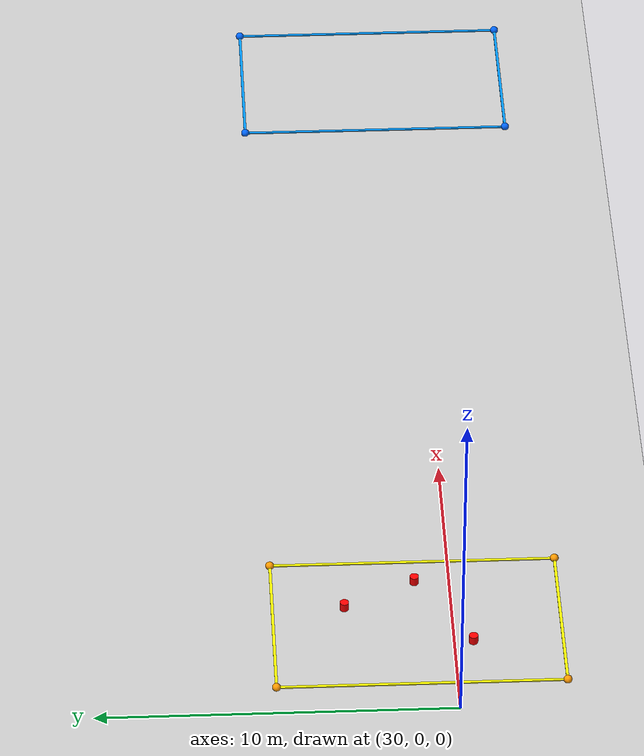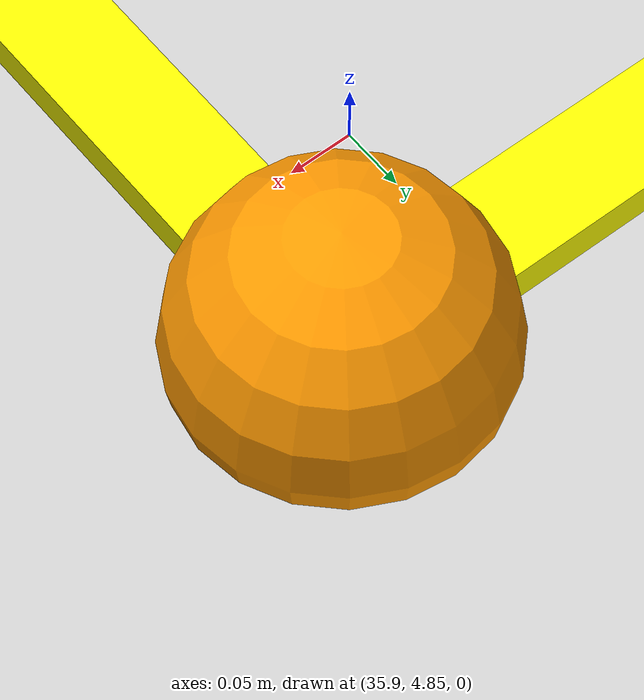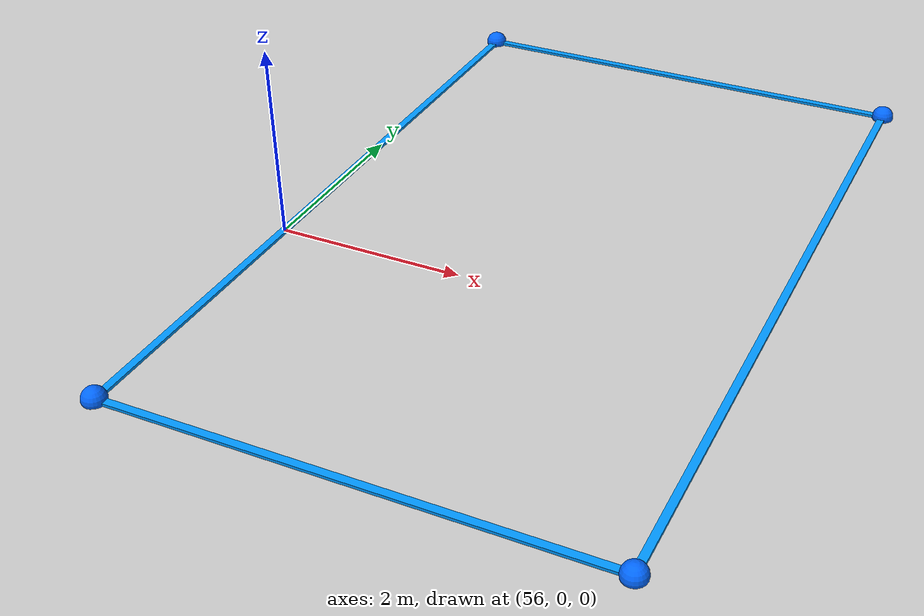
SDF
<?xml version="1.0" ?>
<sdf version="1.6">
  <world name="a">
    <plugin name="gazebo_ros_init" filename="libgazebo_ros_init.so"/>
    <plugin name="gazebo_ros_state" filename="libgazebo_ros_state.so"/>

    <include>
      <uri>model://sun</uri>
    </include>

    <include>
      <uri>model://ground_plane</uri>
    </include>

    <!-- ==================== 投放区 ==================== -->

    <!-- 后端框边 (NED y=30, Gazebo x=31.01) -->
    <model name="drop_border_back">
      <static>true</static>
      <pose>31.01 0.98 0.015 0 0 0</pose>
      <link name="link">
        <collision name="collision">
          <geometry><box><size>0.08 8.0 0.03</size></box></geometry>
        </collision>
        <visual name="visual">
          <geometry><box><size>0.08 8.0 0.03</size></box></geometry>
          <material>
            <ambient>1 1 0 1</ambient>
            <diffuse>1 1 0 1</diffuse>
          </material>
        </visual>
      </link>
    </model>

    <!-- 前端框边 (NED y=35, Gazebo x=36.01) -->
    <model name="drop_border_front">
      <static>true</static>
      <pose>36.01 0.98 0.015 0 0 0</pose>
      <link name="link">
        <collision name="collision">
          <geometry><box><size>0.08 8.0 0.03</size></box></geometry>
        </collision>
        <visual name="visual">
          <geometry><box><size>0.08 8.0 0.03</size></box></geometry>
          <material>
            <ambient>1 1 0 1</ambient>
            <diffuse>1 1 0 1</diffuse>
          </material>
        </visual>
      </link>
    </model>

    <!-- 左框边 (NED x=-4, Gazebo y=-3.02) -->
    <model name="drop_border_left">
      <static>true</static>
      <pose>33.51 -3.02 0.015 0 0 0</pose>
      <link name="link">
        <collision name="collision">
          <geometry><box><size>5.0 0.08 0.03</size></box></geometry>
        </collision>
        <visual name="visual">
          <geometry><box><size>5.0 0.08 0.03</size></box></geometry>
          <material>
            <ambient>1 1 0 1</ambient>
            <diffuse>1 1 0 1</diffuse>
          </material>
        </visual>
      </link>
    </model>

    <!-- 右框边 (NED x=+4, Gazebo y=4.98) -->
    <model name="drop_border_right">
      <static>true</static>
      <pose>33.51 4.98 0.015 0 0 0</pose>
      <link name="link">
        <collision name="collision">
          <geometry><box><size>5.0 0.08 0.03</size></box></geometry>
        </collision>
        <visual name="visual">
          <geometry><box><size>5.0 0.08 0.03</size></box></geometry>
          <material>
            <ambient>1 1 0 1</ambient>
            <diffuse>1 1 0 1</diffuse>
          </material>
        </visual>
      </link>
    </model>

    <!-- 投放区 4 角标 (橙色) -->
    <model name="drop_corner_bl"><static>true</static><pose>31.01 -3.02 0.02 0 0 0</pose>
      <link name="link">
        <visual name="visual">
          <geometry><sphere><radius>0.12</radius></sphere></geometry>
          <material><ambient>1 0.6 0 1</ambient><diffuse>1 0.6 0 1</diffuse></material>
        </visual>
      </link>
    </model>
    <model name="drop_corner_br"><static>true</static><pose>31.01 4.98 0.02 0 0 0</pose>
      <link name="link">
        <visual name="visual">
          <geometry><sphere><radius>0.12</radius></sphere></geometry>
          <material><ambient>1 0.6 0 1</ambient><diffuse>1 0.6 0 1</diffuse></material>
        </visual>
      </link>
    </model>
    <model name="drop_corner_fl"><static>true</static><pose>36.01 -3.02 0.02 0 0 0</pose>
      <link name="link">
        <visual name="visual">
          <geometry><sphere><radius>0.12</radius></sphere></geometry>
          <material><ambient>1 0.6 0 1</ambient><diffuse>1 0.6 0 1</diffuse></material>
        </visual>
      </link>
    </model>
    <model name="drop_corner_fr"><static>true</static><pose>36.01 4.98 0.02 0 0 0</pose>
      <link name="link">
        <visual name="visual">
          <geometry><sphere><radius>0.12</radius></sphere></geometry>
          <material><ambient>1 0.6 0 1</ambient><diffuse>1 0.6 0 1</diffuse></material>
        </visual>
      </link>
    </model>

    <model name="target_bucket_1">
      <pose>32.51 -0.52 0.25 0 0 0</pose>
      <link name="bucket_link">
        <inertial>
          <mass>0.5</mass>
          <inertia>
            <ixx>0.01</ixx><ixy>0</ixy><ixz>0</ixz>
            <iyy>0.01</iyy><iyz>0</iyz>
            <izz>0.01</izz>
          </inertia>
        </inertial>
        <collision name="bucket_collision">
          <geometry>
            <cylinder><radius>0.125</radius><length>0.25</length></cylinder>
          </geometry>
        </collision>
        <visual name="bucket_visual">
          <geometry>
            <cylinder><radius>0.125</radius><length>0.25</length></cylinder>
          </geometry>
          <material>
            <ambient>1 0 0 1</ambient>
            <diffuse>1 0 0 1</diffuse>
          </material>
        </visual>
      </link>
    </model>

    <model name="target_bucket_2">
      <pose>34.01 2.98 0.25 0 0 0</pose>
      <link name="bucket_link">
        <inertial>
          <mass>0.5</mass>
          <inertia>
            <ixx>0.01</ixx><ixy>0</ixy><ixz>0</ixz>
            <iyy>0.01</iyy><iyz>0</iyz>
            <izz>0.01</izz>
          </inertia>
        </inertial>
        <collision name="bucket_collision">
          <geometry>
            <cylinder><radius>0.125</radius><length>0.25</length></cylinder>
          </geometry>
        </collision>
        <visual name="bucket_visual">
          <geometry>
            <cylinder><radius>0.125</radius><length>0.25</length></cylinder>
          </geometry>
          <material>
            <ambient>1 0 0 1</ambient>
            <diffuse>1 0 0 1</diffuse>
          </material>
        </visual>
      </link>
    </model>

    <model name="target_bucket_3">
      <pose>35.01 0.98 0.25 0 0 0</pose>
      <link name="bucket_link">
        <inertial>
          <mass>0.5</mass>
          <inertia>
            <ixx>0.01</ixx><ixy>0</ixy><ixz>0</ixz>
            <iyy>0.01</iyy><iyz>0</iyz>
            <izz>0.01</izz>
          </inertia>
        </inertial>
        <collision name="bucket_collision">
          <geometry>
            <cylinder><radius>0.125</radius><length>0.25</length></cylinder>
          </geometry>
        </collision>
        <visual name="bucket_visual">
          <geometry>
            <cylinder><radius>0.125</radius><length>0.25</length></cylinder>
          </geometry>
          <material>
            <ambient>1 0 0 1</ambient>
            <diffuse>1 0 0 1</diffuse>
          </material>
        </visual>
      </link>
    </model>

    <!-- ==================== 侦察区 (无目标物) ==================== -->

    <!-- 侦察区后端框边 (NED y=55, Gazebo x=56.01) -->
    <model name="scout_border_back">
      <static>true</static>
      <pose>56.01 0.98 0.015 0 0 0</pose>
      <link name="link">
        <collision name="collision">
          <geometry><box><size>0.08 8.0 0.03</size></box></geometry>
        </collision>
        <visual name="visual">
          <geometry><box><size>0.08 8.0 0.03</size></box></geometry>
          <material>
            <ambient>0 0.6 1 1</ambient>
            <diffuse>0 0.6 1 1</diffuse>
          </material>
        </visual>
      </link>
    </model>

    <!-- 侦察区前端框边 (NED y=60, Gazebo x=61.01) -->
    <model name="scout_border_front">
      <static>true</static>
      <pose>61.01 0.98 0.015 0 0 0</pose>
      <link name="link">
        <collision name="collision">
          <geometry><box><size>0.08 8.0 0.03</size></box></geometry>
        </collision>
        <visual name="visual">
          <geometry><box><size>0.08 8.0 0.03</size></box></geometry>
          <material>
            <ambient>0 0.6 1 1</ambient>
            <diffuse>0 0.6 1 1</diffuse>
          </material>
        </visual>
      </link>
    </model>

    <!-- 侦察区左框边 (NED x=-4, Gazebo y=-3.02) -->
    <model name="scout_border_left">
      <static>true</static>
      <pose>58.51 -3.02 0.015 0 0 0</pose>
      <link name="link">
        <collision name="collision">
          <geometry><box><size>5.0 0.08 0.03</size></box></geometry>
        </collision>
        <visual name="visual">
          <geometry><box><size>5.0 0.08 0.03</size></box></geometry>
          <material>
            <ambient>0 0.6 1 1</ambient>
            <diffuse>0 0.6 1 1</diffuse>
          </material>
        </visual>
      </link>
    </model>

    <!-- 侦察区右框边 (NED x=+4, Gazebo y=4.98) -->
    <model name="scout_border_right">
      <static>true</static>
      <pose>58.51 4.98 0.015 0 0 0</pose>
      <link name="link">
        <collision name="collision">
          <geometry><box><size>5.0 0.08 0.03</size></box></geometry>
        </collision>
        <visual name="visual">
          <geometry><box><size>5.0 0.08 0.03</size></box></geometry>
          <material>
            <ambient>0 0.6 1 1</ambient>
            <diffuse>0 0.6 1 1</diffuse>
          </material>
        </visual>
      </link>
    </model>

    <!-- 侦察区 4 角标 (蓝色) -->
    <model name="scout_corner_bl"><static>true</static><pose>56.01 -3.02 0.02 0 0 0</pose>
      <link name="link">
        <visual name="visual">
          <geometry><sphere><radius>0.12</radius></sphere></geometry>
          <material><ambient>0 0.4 1 1</ambient><diffuse>0 0.4 1 1</diffuse></material>
        </visual>
      </link>
    </model>
    <model name="scout_corner_br"><static>true</static><pose>56.01 4.98 0.02 0 0 0</pose>
      <link name="link">
        <visual name="visual">
          <geometry><sphere><radius>0.12</radius></sphere></geometry>
          <material><ambient>0 0.4 1 1</ambient><diffuse>0 0.4 1 1</diffuse></material>
        </visual>
      </link>
    </model>
    <model name="scout_corner_fl"><static>true</static><pose>61.01 -3.02 0.02 0 0 0</pose>
      <link name="link">
        <visual name="visual">
          <geometry><sphere><radius>0.12</radius></sphere></geometry>
          <material><ambient>0 0.4 1 1</ambient><diffuse>0 0.4 1 1</diffuse></material>
        </visual>
      </link>
    </model>
    <model name="scout_corner_fr"><static>true</static><pose>61.01 4.98 0.02 0 0 0</pose>
      <link name="link">
        <visual name="visual">
          <geometry><sphere><radius>0.12</radius></sphere></geometry>
          <material><ambient>0 0.4 1 1</ambient><diffuse>0 0.4 1 1</diffuse></material>
        </visual>
      </link>
    </model>

  </world>
</sdf>
